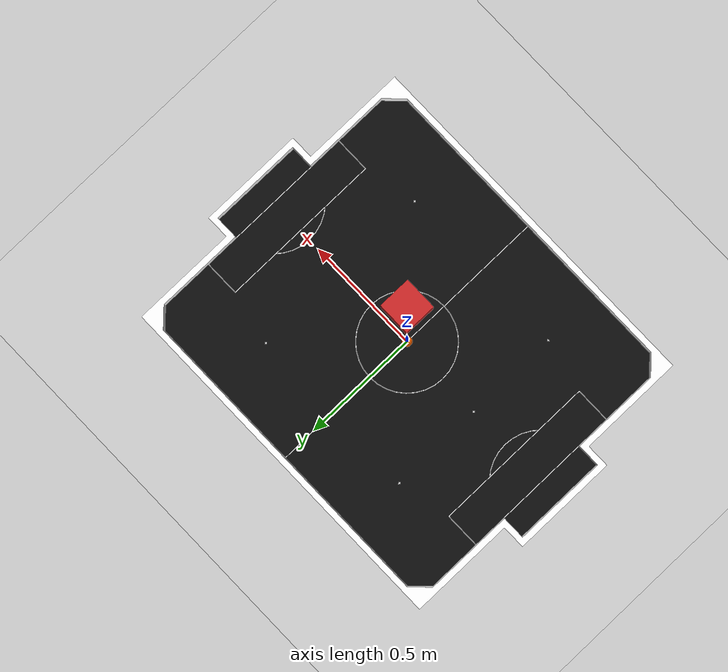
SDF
<?xml version="1.0" ?>

<!-- Simple world with vss field and ball
  Ref:
  https://github.com/osrf/gazebo/blob/gazebo11/worlds/robocup09_spl_field.world -->

<!-- Isometric view version -->

<sdf version="1.5">
  <world name="default">
    <!-- A global light source -->
    <include>
      <uri>model://sun</uri>
    </include>

    <!-- A ground plane -->
    <include>
      <uri>model://ground_plane</uri>
    </include>

    <!-- VSS Field -->
    <include>
      <pose>0 0 0.01 0 0 0</pose>
      <uri>model://vss_field</uri>
    </include>

    <!-- VSS ball -->
    <include>
      <pose>0 0 0.0315 0 0 0</pose>
      <uri>model://vss_ball</uri>
    </include>

    <!-- VSS Camera -->
    <include>
      <uri>model://vss_camera</uri>
    </include>

    <light name='spot_light_1' type='spot'>
      <pose> 1.0 0 1 0 0.68 0</pose>
      <diffuse>0.5 0.5 0.5 1</diffuse>
      <specular>0.1 0.1 0.1 1</specular>
      <direction>0 0 -1</direction>
      <attenuation>
        <range>20</range>
        <constant>0.5</constant>
        <linear>0.01</linear>
        <quadratic>0.001</quadratic>
      </attenuation>
      <cast_shadows>0</cast_shadows>
      <spot>
        <inner_angle>0.6</inner_angle>
        <outer_angle>1</outer_angle>
        <falloff>1</falloff>
      </spot>
    </light>

    <light name='spot_light_0' type='spot'>
      <pose>-1.0 0 1 0 -0.68 0</pose>
      <diffuse>0.5 0.5 0.5 1</diffuse>
      <specular>0.1 0.1 0.1 1</specular>
      <direction>0 0 -1</direction>
      <attenuation>
        <range>20</range>
        <constant>0.5</constant>
        <linear>0.01</linear>
        <quadratic>0.001</quadratic>
      </attenuation>
      <cast_shadows>0</cast_shadows>
      <spot>
        <inner_angle>0.6</inner_angle>
        <outer_angle>1</outer_angle>
        <falloff>1</falloff>
      </spot>
    </light>

    <physics type='ode'>
      <real_time_factor>0.5</real_time_factor>
    </physics>

    <!-- Configure camera angles for isometric view -->
    <gui fullscreen='0'>
      <camera name='user_camera'>
        <pose frame=''>0 0 0 0 0.565472 2.35619</pose>
        <view_controller>ortho</view_controller>
        <projection_type>orthographic</projection_type>
      </camera>
    </gui>
  </world>
</sdf>

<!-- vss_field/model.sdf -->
<!-- To generate a sdf file from urdf, run the command
    gz sdf -p /model.urdf > /model.sdf -->

<!-- Physical parameters (contact properties) taken from
https://bitbucket.org/osrf/gazebo/src/gazebo11/models/ground_plane/model.sdf -->

<sdf version="1.5">
  <model name='vss_field'>

    <static>true</static>

    <link name='base_link'>
      <pose frame=''>0 0 0 0 0 0</pose>

      <inertial>
        <pose frame=''>0 0 0.01 0 0 0</pose>
        <mass>4.8995</mass>
        <inertia>
          <ixx>0.541513</ixx>
          <ixy>5.91216e-07</ixy>
          <ixz>-5.64316e-09</ixz>
          <iyy>0.271333</iyy>
          <iyz>1.16883e-08</iyz>
          <izz>0.81109</izz>
        </inertia>
      </inertial>

      <collision name='base_link_collision'>
        <pose>0 0 -0.005 0 0 0</pose>
        <geometry>
          <box>
            <size>1.75 1.35 0.01</size>
          </box>
        </geometry>
        <surface>
          <friction>
            <ode>
              <mu>0.6</mu>
              <mu2>0.6</mu2>
            </ode>
            <torsional>
              <ode/>
            </torsional>
          </friction>
          <bounce/>
        </surface>
        <max_contacts>20</max_contacts>
      </collision>
      <collision name='laterais_link_collision'>
        <pose frame=''>0 0 0 0 0 0</pose>
        <geometry>
          <mesh>
            <scale>1 1 1</scale>
            <uri>model://vss_field/meshes/laterais_link.stl</uri>
          </mesh>
        </geometry>
      </collision>

      <visual name='base_link_visual'>
        <pose frame=''>0 0 0 0 0 0</pose>
        <geometry>
          <mesh>
            <scale>1 1 1</scale>
            <uri>model://vss_field/meshes/base_link.stl</uri>
          </mesh>
        </geometry>
        <material>
          <ambient>.05 .05 .05 1</ambient>
          <diffuse>.05 .05 .05 1</diffuse>
          <specular>.1 .1 .1 1</specular>
        </material>
      </visual>

      <visual name='marcas_campo_visual'>
        <pose frame=''>0 0 0.0001 0 0 0</pose>
        <geometry>
          <mesh>
            <scale>1 1 1</scale>
            <uri>model://vss_field/meshes/marcas_campo.stl</uri>
          </mesh>
        </geometry>
        <material>
          <ambient>1 1 1 1</ambient>
          <diffuse>1 1 1 1</diffuse>
          <specular>.1 .1 .1 1</specular>
        </material>
      </visual>

      <visual name='laterais_link_visual'>
        <pose frame=''>0 0 0 0 0 0</pose>
        <geometry>
          <mesh>
            <scale>1 1 1</scale>
            <uri>model://vss_field/meshes/laterais_link.stl</uri>
          </mesh>
        </geometry>
        <material>
          <ambient>1 1 1 1</ambient>
          <diffuse>1 1 1 1</diffuse>
          <specular>.1 .1 .1 1</specular>
        </material>
      </visual>

    </link>

  </model>
</sdf>

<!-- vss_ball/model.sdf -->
<!-- File generated with Gazebo Model Editor
Proprieties according to IEEE 3x3 rules -->

<sdf version="1.5">
  <model name='vss_ball'>

    <link name='sphere'>
      <inertial>
        <mass>0.046</mass>
        <inertia>
          <!-- inertia based on solid sphere 2/5 mr^2 -->
          <ixx>2.935e-05</ixx>
          <iyy>2.935e-05</iyy>
          <izz>2.935e-05</izz>
          <ixy>0</ixy>
          <ixz>0</ixz>
          <iyz>0</iyz>
        </inertia>
        <pose frame=''>0 0 0 0 0 0</pose>
      </inertial>

      <pose frame=''>0 0 0 0 0 0</pose>
      <gravity>1</gravity>
      <self_collide>0</self_collide>
      <kinematic>0</kinematic>
      <enable_wind>0</enable_wind>

      <visual name='visual'>
        <pose frame=''>0 0 0 0 0 0</pose>
        <geometry>
          <sphere>
            <radius>0.02135</radius>
          </sphere>
        </geometry>
        <material>
          <ambient>1 .4 0 1</ambient>
          <diffuse>1 .4 0 1</diffuse>
          <specular>.1 .1 .1 1</specular>
        </material>
        <transparency>0</transparency>
        <cast_shadows>0</cast_shadows>
      </visual>

      <collision name='collision'>
        <laser_retro>0</laser_retro>
        <max_contacts>10</max_contacts>
        <pose frame=''>0 0 0 0 0 0</pose>
        <geometry>
          <sphere>
            <radius>0.02135</radius>
          </sphere>
        </geometry>
        <surface>
          <friction>
            <ode>
              <mu>0.1</mu>
              <mu2>0.1</mu2>
            </ode>
            <torsional>
              <coefficient>1</coefficient>
              <patch_radius>0</patch_radius>
              <surface_radius>0</surface_radius>
              <use_patch_radius>1</use_patch_radius>
            </torsional>
          </friction>
          <bounce>
            <restitution_coefficient>0.9</restitution_coefficient>
            <threshold>1e+06</threshold>
          </bounce>
          <contact>
            <collide_without_contact>0</collide_without_contact>
            <collide_without_contact_bitmask>1</collide_without_contact_bitmask>
            <collide_bitmask>1</collide_bitmask>
            <ode>
              <soft_cfm>0</soft_cfm>
              <soft_erp>0.2</soft_erp>
              <kp>1e+13</kp>
              <kd>1</kd>
              <max_vel>10</max_vel>
              <min_depth>0</min_depth>
            </ode>
          </contact>
        </surface>
      </collision>
    </link>
    <static>0</static>
    <allow_auto_disable>1</allow_auto_disable>
  </model>
</sdf>

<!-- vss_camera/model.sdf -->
<!-- Refs: http://gazebosim.org/tutorials?tut=camera_save
http://gazebosim.org/tutorials?tut=ros_gzplugins#Camera
  http://wiki.ros.org/image_view -->

<sdf version="1.5">
  <model name='camera'>
    <static>true</static>
    <pose>0 0 2 -1.57 1.57 0</pose>
    <link name='camera_link'>
      <visual name='visual'>
        <geometry>
          <box>
            <size>0.1 0.1 0.1</size>
          </box>
        </geometry>
        <material>
          <script>
            <name>Gazebo/Red</name>
            <uri>file://media/materials/scripts/gazebo.material</uri>
          </script>
        </material>
      </visual>

      <sensor name='camera_sensor' type='camera'>
        <camera>
          <horizontal_fov>1.047</horizontal_fov>
          <image>
            <width>800</width>
            <height>600</height>
          </image>
          <clip>
            <near>0.1</near>
            <far>100</far>
          </clip>
        </camera>
        <always_on>1</always_on>
        <update_rate>60</update_rate>
        <plugin
          filename="libignition-gazebo-sensors-system.so"
          name="ignition::gazebo::systems::Sensors">
          <render_engine>ogre2</render_engine>
        </plugin>
      </sensor>
    </link>
  </model>
</sdf>
